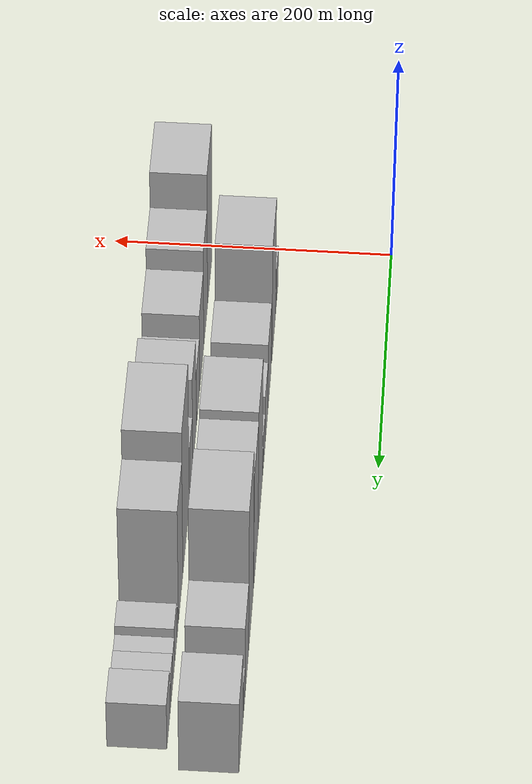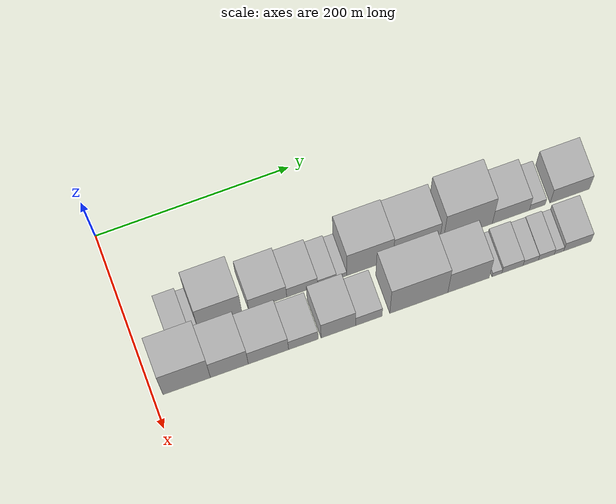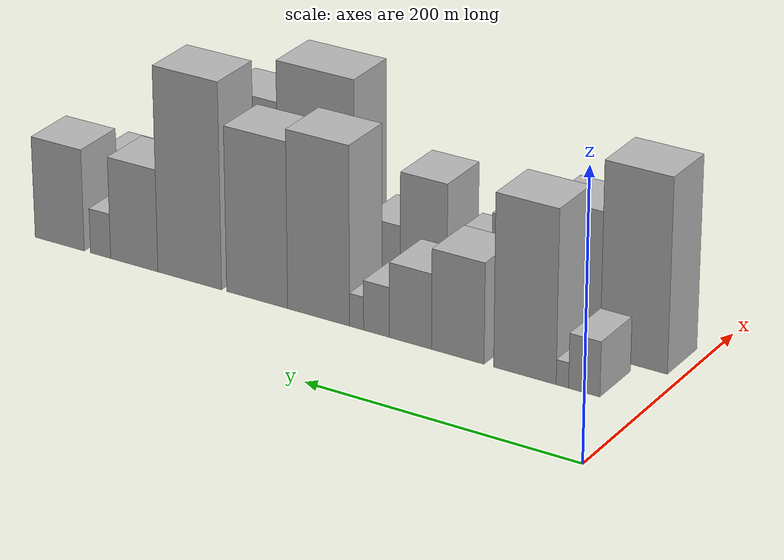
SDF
<sdf version="1.6">
 <world name="default">
  <model name="building_14">
   <static>1</static>
   <pose>100.0000 43.3374 0 0.000000 0.000000 0.000000</pose>
   <link name="link">
    <pose>0 0 19.50 0 0 0</pose>
    <collision name="collision"><geometry><box><size>40.0000 22.4401 39.0000</size></box></geometry></collision>
    <visual name="visual">
     <cast_shadows>0</cast_shadows>
     <geometry><box><size>40.0000 22.4401 39.0000</size></box></geometry>
     <material>
      <script>
       <uri>model://HANNAS_wall/materials/scripts</uri>
       <uri>model://HANNAS_wall/materials/textures</uri>
       <name>vrc/HANNAS_wall</name>
      </script>
     </material>
    </visual>
   </link>
  </model>
  <model name="building_15">
   <static>1</static>
   <pose>100.0000 59.0498 0 0.000000 0.000000 0.000000</pose>
   <link name="link">
    <pose>0 0 9.00 0 0 0</pose>
    <collision name="collision"><geometry><box><size>40.0000 8.9847 18.0000</size></box></geometry></collision>
    <visual name="visual">
     <cast_shadows>0</cast_shadows>
     <geometry><box><size>40.0000 8.9847 18.0000</size></box></geometry>
     <material>
      <script>
       <uri>model://HANNAS_wall/materials/scripts</uri>
       <uri>model://HANNAS_wall/materials/textures</uri>
       <name>vrc/HANNAS_wall</name>
      </script>
     </material>
    </visual>
   </link>
  </model>
  <model name="building_16">
   <static>1</static>
   <pose>100.0000 86.3163 0 0.000000 0.000000 0.000000</pose>
   <link name="link">
    <pose>0 0 61.50 0 0 0</pose>
    <collision name="collision"><geometry><box><size>40.0000 45.5483 123.0000</size></box></geometry></collision>
    <visual name="visual">
     <cast_shadows>0</cast_shadows>
     <geometry><box><size>40.0000 45.5483 123.0000</size></box></geometry>
     <material>
      <script>
       <uri>model://HANNAS_wall/materials/scripts</uri>
       <uri>model://HANNAS_wall/materials/textures</uri>
       <name>vrc/HANNAS_wall</name>
      </script>
     </material>
    </visual>
   </link>
  </model>
  <model name="building_17">
   <static>1</static>
   <pose>100.0000 135.6190 0 0.000000 0.000000 0.000000</pose>
   <link name="link">
    <pose>0 0 36.00 0 0 0</pose>
    <collision name="collision"><geometry><box><size>40.0000 39.0570 72.0000</size></box></geometry></collision>
    <visual name="visual">
     <cast_shadows>0</cast_shadows>
     <geometry><box><size>40.0000 39.0570 72.0000</size></box></geometry>
     <material>
      <script>
       <uri>model://HANNAS_wall/materials/scripts</uri>
       <uri>model://HANNAS_wall/materials/textures</uri>
       <name>vrc/HANNAS_wall</name>
      </script>
     </material>
    </visual>
   </link>
  </model>
  <model name="building_18">
   <static>1</static>
   <pose>100.0000 171.1100 0 0.000000 0.000000 0.000000</pose>
   <link name="link">
    <pose>0 0 27.00 0 0 0</pose>
    <collision name="collision"><geometry><box><size>40.0000 31.9250 54.0000</size></box></geometry></collision>
    <visual name="visual">
     <cast_shadows>0</cast_shadows>
     <geometry><box><size>40.0000 31.9250 54.0000</size></box></geometry>
     <material>
      <script>
       <uri>model://HANNAS_wall/materials/scripts</uri>
       <uri>model://HANNAS_wall/materials/textures</uri>
       <name>vrc/HANNAS_wall</name>
      </script>
     </material>
    </visual>
   </link>
  </model>
  <model name="building_19">
   <static>1</static>
   <pose>100.0000 196.7690 0 0.000000 0.000000 0.000000</pose>
   <link name="link">
    <pose>0 0 18.00 0 0 0</pose>
    <collision name="collision"><geometry><box><size>40.0000 19.3929 36.0000</size></box></geometry></collision>
    <visual name="visual">
     <cast_shadows>0</cast_shadows>
     <geometry><box><size>40.0000 19.3929 36.0000</size></box></geometry>
     <material>
      <script>
       <uri>model://HANNAS_wall/materials/scripts</uri>
       <uri>model://HANNAS_wall/materials/textures</uri>
       <name>vrc/HANNAS_wall</name>
      </script>
     </material>
    </visual>
   </link>
  </model>
  <model name="building_20">
   <static>1</static>
   <pose>100.0000 211.7643 0 0.000000 0.000000 0.000000</pose>
   <link name="link">
    <pose>0 0 12.00 0 0 0</pose>
    <collision name="collision"><geometry><box><size>40.0000 10.5976 24.0000</size></box></geometry></collision>
    <visual name="visual">
     <cast_shadows>0</cast_shadows>
     <geometry><box><size>40.0000 10.5976 24.0000</size></box></geometry>
     <material>
      <script>
       <uri>model://HANNAS_wall/materials/scripts</uri>
       <uri>model://HANNAS_wall/materials/textures</uri>
       <name>vrc/HANNAS_wall</name>
      </script>
     </material>
    </visual>
   </link>
  </model>
  <model name="building_21">
   <static>1</static>
   <pose>100.0000 240.9793 0 0.000000 0.000000 0.000000</pose>
   <link name="link">
    <pose>0 0 64.50 0 0 0</pose>
    <collision name="collision"><geometry><box><size>40.0000 47.8324 129.0000</size></box></geometry></collision>
    <visual name="visual">
     <cast_shadows>0</cast_shadows>
     <geometry><box><size>40.0000 47.8324 129.0000</size></box></geometry>
     <material>
      <script>
       <uri>model://HANNAS_wall/materials/scripts</uri>
       <uri>model://HANNAS_wall/materials/textures</uri>
       <name>vrc/HANNAS_wall</name>
      </script>
     </material>
    </visual>
   </link>
  </model>
  <model name="building_22">
   <static>1</static>
   <pose>100.0000 288.8334 0 0.000000 0.000000 0.000000</pose>
   <link name="link">
    <pose>0 0 60.00 0 0 0</pose>
    <collision name="collision"><geometry><box><size>40.0000 47.8759 120.0000</size></box></geometry></collision>
    <visual name="visual">
     <cast_shadows>0</cast_shadows>
     <geometry><box><size>40.0000 47.8759 120.0000</size></box></geometry>
     <material>
      <script>
       <uri>model://HANNAS_wall/materials/scripts</uri>
       <uri>model://HANNAS_wall/materials/textures</uri>
       <name>vrc/HANNAS_wall</name>
      </script>
     </material>
    </visual>
   </link>
  </model>
  <model name="building_23">
   <static>1</static>
   <pose>100.0000 342.2572 0 0.000000 0.000000 0.000000</pose>
   <link name="link">
    <pose>0 0 75.00 0 0 0</pose>
    <collision name="collision"><geometry><box><size>40.0000 50.9718 150.0000</size></box></geometry></collision>
    <visual name="visual">
     <cast_shadows>0</cast_shadows>
     <geometry><box><size>40.0000 50.9718 150.0000</size></box></geometry>
     <material>
      <script>
       <uri>model://HANNAS_wall/materials/scripts</uri>
       <uri>model://HANNAS_wall/materials/textures</uri>
       <name>vrc/HANNAS_wall</name>
      </script>
     </material>
    </visual>
   </link>
  </model>
  <model name="building_24">
   <static>1</static>
   <pose>100.0000 386.9692 0 0.000000 0.000000 0.000000</pose>
   <link name="link">
    <pose>0 0 37.50 0 0 0</pose>
    <collision name="collision"><geometry><box><size>40.0000 38.4520 75.0000</size></box></geometry></collision>
    <visual name="visual">
     <cast_shadows>0</cast_shadows>
     <geometry><box><size>40.0000 38.4520 75.0000</size></box></geometry>
     <material>
      <script>
       <uri>model://HANNAS_wall/materials/scripts</uri>
       <uri>model://HANNAS_wall/materials/textures</uri>
       <name>vrc/HANNAS_wall</name>
      </script>
     </material>
    </visual>
   </link>
  </model>
  <model name="building_25">
   <static>1</static>
   <pose>100.0000 414.5128 0 0.000000 0.000000 0.000000</pose>
   <link name="link">
    <pose>0 0 16.50 0 0 0</pose>
    <collision name="collision"><geometry><box><size>40.0000 16.6353 33.0000</size></box></geometry></collision>
    <visual name="visual">
     <cast_shadows>0</cast_shadows>
     <geometry><box><size>40.0000 16.6353 33.0000</size></box></geometry>
     <material>
      <script>
       <uri>model://HANNAS_wall/materials/scripts</uri>
       <uri>model://HANNAS_wall/materials/textures</uri>
       <name>vrc/HANNAS_wall</name>
      </script>
     </material>
    </visual>
   </link>
  </model>
  <model name="building_26">
   <static>1</static>
   <pose>100.0000 448.2294 0 0.000000 0.000000 0.000000</pose>
   <link name="link">
    <pose>0 0 37.50 0 0 0</pose>
    <collision name="collision"><geometry><box><size>40.0000 40.7977 75.0000</size></box></geometry></collision>
    <visual name="visual">
     <cast_shadows>0</cast_shadows>
     <geometry><box><size>40.0000 40.7977 75.0000</size></box></geometry>
     <material>
      <script>
       <uri>model://HANNAS_wall/materials/scripts</uri>
       <uri>model://HANNAS_wall/materials/textures</uri>
       <name>vrc/HANNAS_wall</name>
      </script>
     </material>
    </visual>
   </link>
  </model>
  <model name="building_38">
   <static>1</static>
   <pose>149.0000 34.6893 0 0.000000 0.000000 0.000000</pose>
   <link name="link">
    <pose>0 0 69.00 0 0 0</pose>
    <collision name="collision"><geometry><box><size>40.0000 48.7433 138.0000</size></box></geometry></collision>
    <visual name="visual">
     <cast_shadows>0</cast_shadows>
     <geometry><box><size>40.0000 48.7433 138.0000</size></box></geometry>
     <material>
      <script>
       <uri>model://HANNAS_wall/materials/scripts</uri>
       <uri>model://HANNAS_wall/materials/textures</uri>
       <name>vrc/HANNAS_wall</name>
      </script>
     </material>
    </visual>
   </link>
  </model>
  <model name="building_39">
   <static>1</static>
   <pose>149.0000 78.5258 0 0.000000 0.000000 0.000000</pose>
   <link name="link">
    <pose>0 0 51.00 0 0 0</pose>
    <collision name="collision"><geometry><box><size>40.0000 38.9297 102.0000</size></box></geometry></collision>
    <visual name="visual">
     <cast_shadows>0</cast_shadows>
     <geometry><box><size>40.0000 38.9297 102.0000</size></box></geometry>
     <material>
      <script>
       <uri>model://HANNAS_wall/materials/scripts</uri>
       <uri>model://HANNAS_wall/materials/textures</uri>
       <name>vrc/HANNAS_wall</name>
      </script>
     </material>
    </visual>
   </link>
  </model>
  <model name="building_40">
   <static>1</static>
   <pose>149.0000 118.7123 0 0.000000 0.000000 0.000000</pose>
   <link name="link">
    <pose>0 0 40.50 0 0 0</pose>
    <collision name="collision"><geometry><box><size>40.0000 41.4432 81.0000</size></box></geometry></collision>
    <visual name="visual">
     <cast_shadows>0</cast_shadows>
     <geometry><box><size>40.0000 41.4432 81.0000</size></box></geometry>
     <material>
      <script>
       <uri>model://HANNAS_wall/materials/scripts</uri>
       <uri>model://HANNAS_wall/materials/textures</uri>
       <name>vrc/HANNAS_wall</name>
      </script>
     </material>
    </visual>
   </link>
  </model>
  <model name="building_41">
   <static>1</static>
   <pose>149.0000 154.7037 0 0.000000 0.000000 0.000000</pose>
   <link name="link">
    <pose>0 0 28.50 0 0 0</pose>
    <collision name="collision"><geometry><box><size>40.0000 30.5398 57.0000</size></box></geometry></collision>
    <visual name="visual">
     <cast_shadows>0</cast_shadows>
     <geometry><box><size>40.0000 30.5398 57.0000</size></box></geometry>
     <material>
      <script>
       <uri>model://HANNAS_wall/materials/scripts</uri>
       <uri>model://HANNAS_wall/materials/textures</uri>
       <name>vrc/HANNAS_wall</name>
      </script>
     </material>
    </visual>
   </link>
  </model>
  <model name="building_42">
   <static>1</static>
   <pose>149.0000 190.7265 0 0.000000 0.000000 0.000000</pose>
   <link name="link">
    <pose>0 0 46.50 0 0 0</pose>
    <collision name="collision"><geometry><box><size>40.0000 35.5057 93.0000</size></box></geometry></collision>
    <visual name="visual">
     <cast_shadows>0</cast_shadows>
     <geometry><box><size>40.0000 35.5057 93.0000</size></box></geometry>
     <material>
      <script>
       <uri>model://HANNAS_wall/materials/scripts</uri>
       <uri>model://HANNAS_wall/materials/textures</uri>
       <name>vrc/HANNAS_wall</name>
      </script>
     </material>
    </visual>
   </link>
  </model>
  <model name="building_43">
   <static>1</static>
   <pose>149.0000 222.1481 0 0.000000 0.000000 0.000000</pose>
   <link name="link">
    <pose>0 0 27.00 0 0 0</pose>
    <collision name="collision"><geometry><box><size>40.0000 27.3376 54.0000</size></box></geometry></collision>
    <visual name="visual">
     <cast_shadows>0</cast_shadows>
     <geometry><box><size>40.0000 27.3376 54.0000</size></box></geometry>
     <material>
      <script>
       <uri>model://HANNAS_wall/materials/scripts</uri>
       <uri>model://HANNAS_wall/materials/textures</uri>
       <name>vrc/HANNAS_wall</name>
      </script>
     </material>
    </visual>
   </link>
  </model>
  <model name="building_44">
   <static>1</static>
   <pose>149.0000 273.7868 0 0.000000 0.000000 0.000000</pose>
   <link name="link">
    <pose>0 0 75.00 0 0 0</pose>
    <collision name="collision"><geometry><box><size>40.0000 59.9398 150.0000</size></box></geometry></collision>
    <visual name="visual">
     <cast_shadows>0</cast_shadows>
     <geometry><box><size>40.0000 59.9398 150.0000</size></box></geometry>
     <material>
      <script>
       <uri>model://HANNAS_wall/materials/scripts</uri>
       <uri>model://HANNAS_wall/materials/textures</uri>
       <name>vrc/HANNAS_wall</name>
      </script>
     </material>
    </visual>
   </link>
  </model>
  <model name="building_45">
   <static>1</static>
   <pose>149.0000 325.1257 0 0.000000 0.000000 0.000000</pose>
   <link name="link">
    <pose>0 0 60.00 0 0 0</pose>
    <collision name="collision"><geometry><box><size>40.0000 42.7380 120.0000</size></box></geometry></collision>
    <visual name="visual">
     <cast_shadows>0</cast_shadows>
     <geometry><box><size>40.0000 42.7380 120.0000</size></box></geometry>
     <material>
      <script>
       <uri>model://HANNAS_wall/materials/scripts</uri>
       <uri>model://HANNAS_wall/materials/textures</uri>
       <name>vrc/HANNAS_wall</name>
      </script>
     </material>
    </visual>
   </link>
  </model>
  <model name="building_46">
   <static>1</static>
   <pose>149.0000 354.5893 0 0.000000 0.000000 0.000000</pose>
   <link name="link">
    <pose>0 0 12.00 0 0 0</pose>
    <collision name="collision"><geometry><box><size>40.0000 10.1891 24.0000</size></box></geometry></collision>
    <visual name="visual">
     <cast_shadows>0</cast_shadows>
     <geometry><box><size>40.0000 10.1891 24.0000</size></box></geometry>
     <material>
      <script>
       <uri>model://HANNAS_wall/materials/scripts</uri>
       <uri>model://HANNAS_wall/materials/textures</uri>
       <name>vrc/HANNAS_wall</name>
      </script>
     </material>
    </visual>
   </link>
  </model>
  <model name="building_47">
   <static>1</static>
   <pose>149.0000 370.6328 0 0.000000 0.000000 0.000000</pose>
   <link name="link">
    <pose>0 0 19.50 0 0 0</pose>
    <collision name="collision"><geometry><box><size>40.0000 21.8979 39.0000</size></box></geometry></collision>
    <visual name="visual">
     <cast_shadows>0</cast_shadows>
     <geometry><box><size>40.0000 21.8979 39.0000</size></box></geometry>
     <material>
      <script>
       <uri>model://HANNAS_wall/materials/scripts</uri>
       <uri>model://HANNAS_wall/materials/textures</uri>
       <name>vrc/HANNAS_wall</name>
      </script>
     </material>
    </visual>
   </link>
  </model>
  <model name="building_48">
   <static>1</static>
   <pose>149.0000 389.5400 0 0.000000 0.000000 0.000000</pose>
   <link name="link">
    <pose>0 0 15.00 0 0 0</pose>
    <collision name="collision"><geometry><box><size>40.0000 15.9164 30.0000</size></box></geometry></collision>
    <visual name="visual">
     <cast_shadows>0</cast_shadows>
     <geometry><box><size>40.0000 15.9164 30.0000</size></box></geometry>
     <material>
      <script>
       <uri>model://HANNAS_wall/materials/scripts</uri>
       <uri>model://HANNAS_wall/materials/textures</uri>
       <name>vrc/HANNAS_wall</name>
      </script>
     </material>
    </visual>
   </link>
  </model>
  <model name="building_49">
   <static>1</static>
   <pose>149.0000 405.7886 0 0.000000 0.000000 0.000000</pose>
   <link name="link">
    <pose>0 0 16.50 0 0 0</pose>
    <collision name="collision"><geometry><box><size>40.0000 16.5807 33.0000</size></box></geometry></collision>
    <visual name="visual">
     <cast_shadows>0</cast_shadows>
     <geometry><box><size>40.0000 16.5807 33.0000</size></box></geometry>
     <material>
      <script>
       <uri>model://HANNAS_wall/materials/scripts</uri>
       <uri>model://HANNAS_wall/materials/textures</uri>
       <name>vrc/HANNAS_wall</name>
      </script>
     </material>
    </visual>
   </link>
  </model>
  <model name="building_50">
   <static>1</static>
   <pose>149.0000 418.8974 0 0.000000 0.000000 0.000000</pose>
   <link name="link">
    <pose>0 0 12.00 0 0 0</pose>
    <collision name="collision"><geometry><box><size>40.0000 9.6369 24.0000</size></box></geometry></collision>
    <visual name="visual">
     <cast_shadows>0</cast_shadows>
     <geometry><box><size>40.0000 9.6369 24.0000</size></box></geometry>
     <material>
      <script>
       <uri>model://HANNAS_wall/materials/scripts</uri>
       <uri>model://HANNAS_wall/materials/textures</uri>
       <name>vrc/HANNAS_wall</name>
      </script>
     </material>
    </visual>
   </link>
  </model>
  <model name="building_51">
   <static>1</static>
   <pose>149.0000 438.0199 0 0.000000 0.000000 0.000000</pose>
   <link name="link">
    <pose>0 0 24.00 0 0 0</pose>
    <collision name="collision"><geometry><box><size>40.0000 28.6080 48.0000</size></box></geometry></collision>
    <visual name="visual">
     <cast_shadows>0</cast_shadows>
     <geometry><box><size>40.0000 28.6080 48.0000</size></box></geometry>
     <material>
      <script>
       <uri>model://HANNAS_wall/materials/scripts</uri>
       <uri>model://HANNAS_wall/materials/textures</uri>
       <name>vrc/HANNAS_wall</name>
      </script>
     </material>
    </visual>
   </link>
  </model>
 </world>
</sdf>
